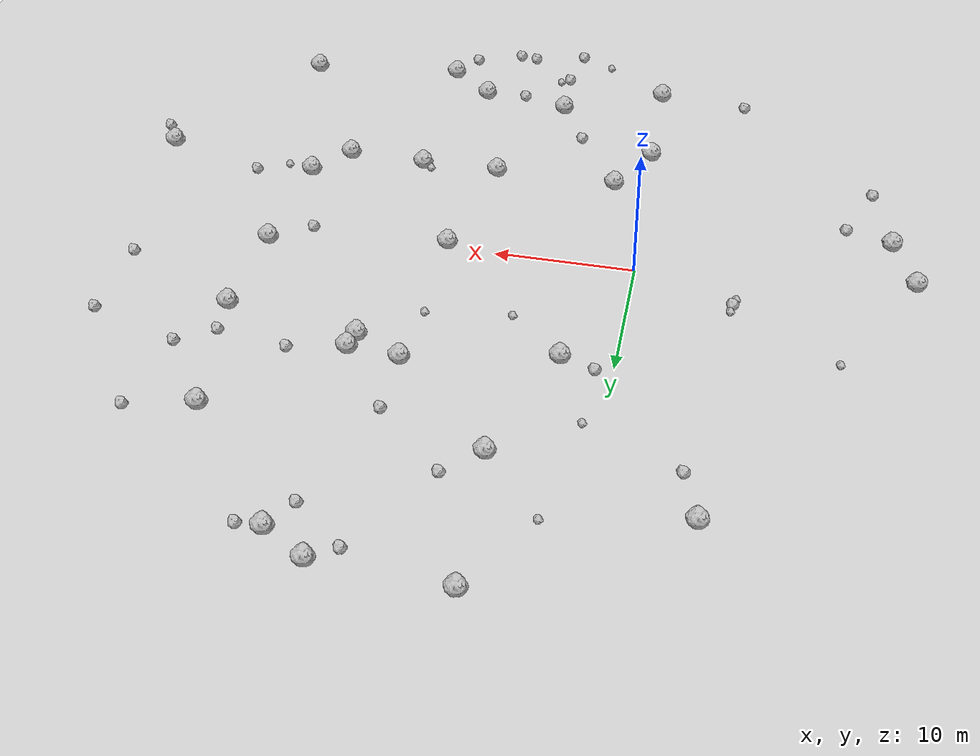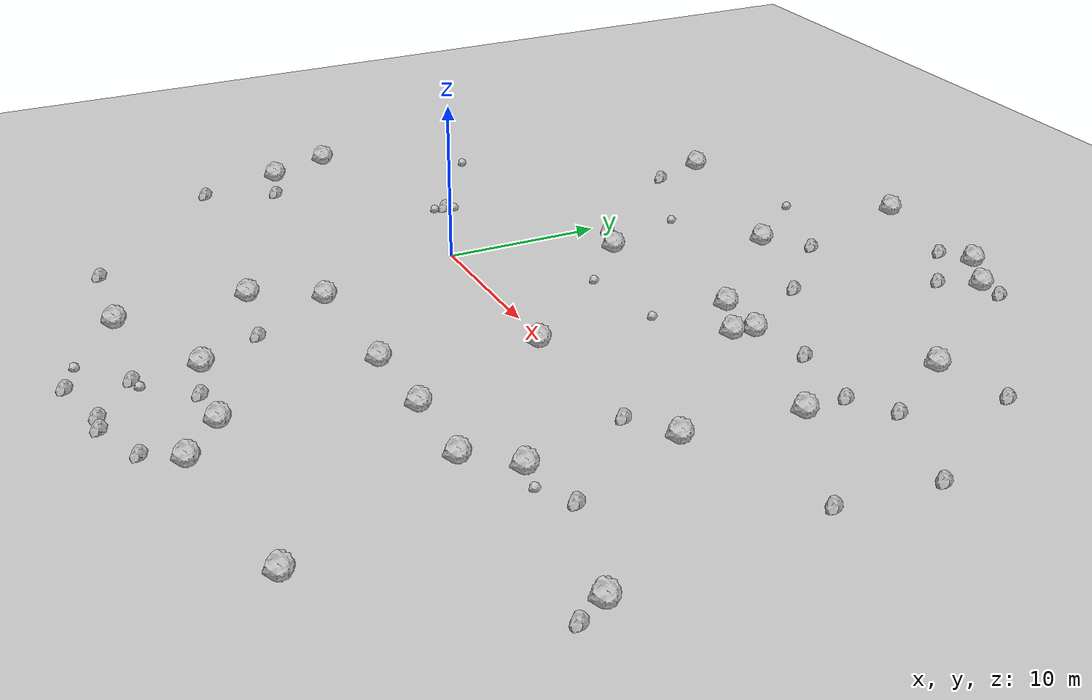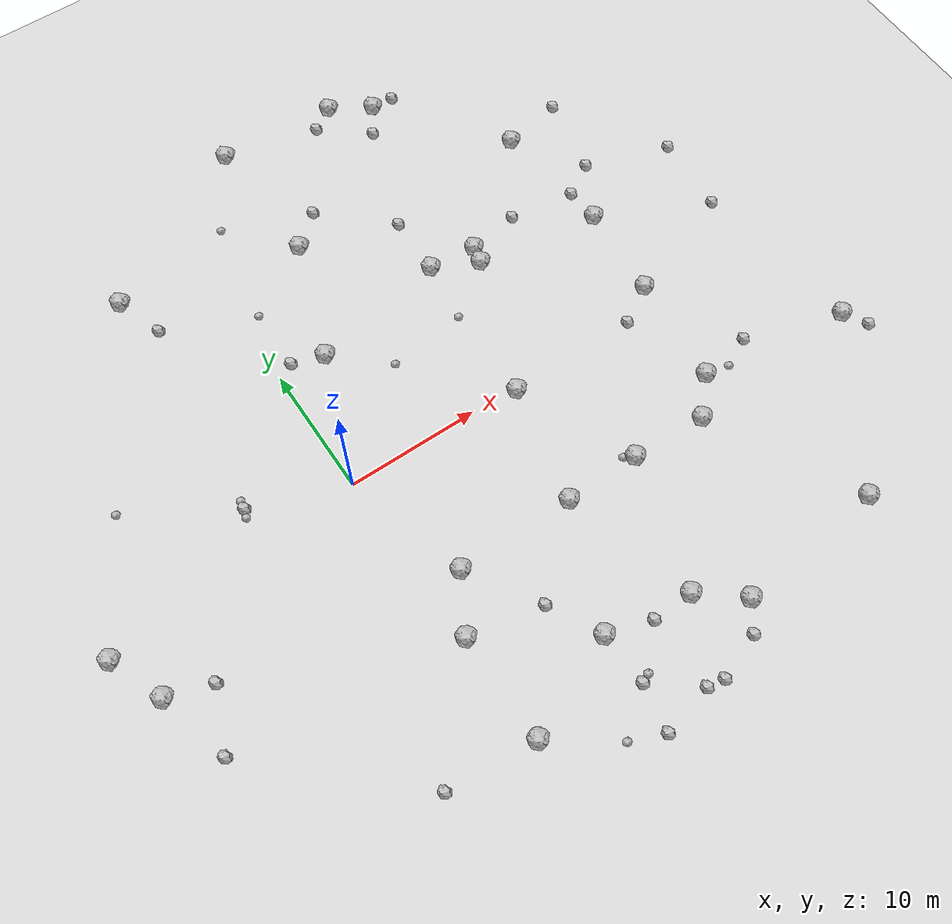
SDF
<sdf version="1.6">
 <world name="default">
  <include><uri>model://custom_ground</uri></include>
  <include><uri>model://sun</uri></include>
  <model name="rock1_0_0">
   <include><uri>model://rock1</uri><pose>8.014704926354462 -18.49361364034207 0.5 0 0 0</pose></include>
  </model>
  <model name="rock1_0_1">
   <include><uri>model://rock1</uri><pose>25.573061405672973 -6.980809967983461 0.5 0 0 0</pose></include>
  </model>
  <model name="rock1_0_2">
   <include><uri>model://rock1</uri><pose>37.05892887886623 -8.57857589583287 0.5 0 0 0</pose></include>
  </model>
  <model name="rock1_0_3">
   <include><uri>model://rock1</uri><pose>14.447380397119069 -19.399505642528474 0.5 0 0 0</pose></include>
  </model>
  <model name="rock1_0_4">
   <include><uri>model://rock1</uri><pose>17.507150166787127 10.083130815820375 0.5 0 0 0</pose></include>
  </model>
  <model name="rock1_0_5">
   <include><uri>model://rock1</uri><pose>6.905325119836373 18.913771559148323 0.5 0 0 0</pose></include>
  </model>
  <model name="rock1_0_6">
   <include><uri>model://rock1</uri><pose>23.159705777969215 -9.58704639761536 0.5 0 0 0</pose></include>
  </model>
  <model name="rock1_0_7">
   <include><uri>model://rock1</uri><pose>-19.50006351161806 -1.8972151291231683 0.5 0 0 0</pose></include>
  </model>
  <model name="rock1_0_8">
   <include><uri>model://rock1</uri><pose>17.813895654922767 11.406422860787089 0.5 0 0 0</pose></include>
  </model>
  <model name="rock1_0_9">
   <include><uri>model://rock1</uri><pose>0.5192502456148027 -21.61946003745059 0.5 0 0 0</pose></include>
  </model>
  <model name="rock1_0_10">
   <include><uri>model://rock1</uri><pose>2.745626244234355 -9.46299703782589 0.5 0 0 0</pose></include>
  </model>
  <model name="rock1_0_11">
   <include><uri>model://rock1</uri><pose>18.632980836648805 27.21927604334565 0.5 0 0 0</pose></include>
  </model>
  <model name="rock1_0_12">
   <include><uri>model://rock1</uri><pose>26.38935250381023 1.4144262218475596 0.5 0 0 0</pose></include>
  </model>
  <model name="rock1_0_13">
   <include><uri>model://rock1</uri><pose>28.897749746792393 -20.71360675136828 0.5 0 0 0</pose></include>
  </model>
  <model name="rock1_0_14">
   <include><uri>model://rock1</uri><pose>3.7014788950971607 9.723189109151342 0.5 0 0 0</pose></include>
  </model>
  <model name="rock1_0_15">
   <include><uri>model://rock1</uri><pose>17.43358810798727 -9.358902019188484 0.5 0 0 0</pose></include>
  </model>
  <model name="rock1_0_16">
   <include><uri>model://rock1</uri><pose>-6.60727233602568 22.009721791537636 0.5 0 0 0</pose></include>
  </model>
  <model name="rock1_0_17">
   <include><uri>model://rock1</uri><pose>-17.797919921751703 -6.024557068145057 0.5 0 0 0</pose></include>
  </model>
  <model name="rock1_0_18">
   <include><uri>model://rock1</uri><pose>15.584479629937796 29.050384454229686 0.5 0 0 0</pose></include>
  </model>
  <model name="rock1_0_19">
   <include><uri>model://rock1</uri><pose>25.901384876871496 18.183010731451347 0.5 0 0 0</pose></include>
  </model>
  <model name="rock1_0_20">
   <include><uri>model://rock1</uri><pose>27.01945758188611 8.652305441681001 0.5 0 0 0</pose></include>
  </model>
  <model name="rock1_0_21">
   <include><uri>model://rock1</uri><pose>0.4313742360857482 -13.568947367759126 0.5 0 0 0</pose></include>
  </model>
  <model name="rock1_0_22">
   <include><uri>model://rock1</uri><pose>6.426039027255786 29.51596994248677 0.5 0 0 0</pose></include>
  </model>
  <model name="rock1_0_23">
   <include><uri>model://rock1</uri><pose>13.568272839234723 -0.3965600072551716 0.5 0 0 0</pose></include>
  </model>
  <model name="rock1_0_24">
   <include><uri>model://rock1</uri><pose>11.709690238882342 -9.42730344883794 0.5 0 0 0</pose></include>
  </model>
  <model name="rock1_0_25">
   <include><uri>model://rock1</uri><pose>14.149274765556385 11.738043072748539 0.5 0 0 0</pose></include>
  </model>
  <model name="rock1_0_26">
   <include><uri>model://rock1</uri><pose>17.533495181565385 -21.900562409363282 0.5 0 0 0</pose></include>
  </model>
  <model name="rock2_0_0">
   <include><uri>model://rock2</uri><pose>17.19937635421008 25.050068668480158 0.3 0 0 0</pose></include>
  </model>
  <model name="rock2_0_1">
   <include><uri>model://rock2</uri><pose>-7.120115281056501 2.5367088496326815 0.3 0 0 0</pose></include>
  </model>
  <model name="rock2_0_2">
   <include><uri>model://rock2</uri><pose>-6.165717397587546 -21.011113587989858 0.3 0 0 0</pose></include>
  </model>
  <model name="rock2_0_3">
   <include><uri>model://rock2</uri><pose>13.677902977760269 27.925249224654962 0.3 0 0 0</pose></include>
  </model>
  <model name="rock2_0_4">
   <include><uri>model://rock2</uri><pose>11.37713108671744 -24.966520231783253 0.3 0 0 0</pose></include>
  </model>
  <model name="rock2_0_5">
   <include><uri>model://rock2</uri><pose>7.514766203739217 -25.891973493161423 0.3 0 0 0</pose></include>
  </model>
  <model name="rock2_0_6">
   <include><uri>model://rock2</uri><pose>35.80363520152538 10.823405719210136 0.3 0 0 0</pose></include>
  </model>
  <model name="rock2_0_7">
   <include><uri>model://rock2</uri><pose>12.672210038756987 -25.17892123750584 0.3 0 0 0</pose></include>
  </model>
  <model name="rock2_0_8">
   <include><uri>model://rock2</uri><pose>35.33024511589522 4.657484730109331 0.3 0 0 0</pose></include>
  </model>
  <model name="rock2_0_9">
   <include><uri>model://rock2</uri><pose>9.329796938099058 21.118287279019604 0.3 0 0 0</pose></include>
  </model>
  <model name="rock2_0_10">
   <include><uri>model://rock2</uri><pose>30.572122042076934 19.207183093456244 0.3 0 0 0</pose></include>
  </model>
  <model name="rock2_0_11">
   <include><uri>model://rock2</uri><pose>29.63920740459602 -6.1987073161828405 0.3 0 0 0</pose></include>
  </model>
  <model name="rock2_0_12">
   <include><uri>model://rock2</uri><pose>-16.36614117996037 -11.485509086337501 0.3 0 0 0</pose></include>
  </model>
  <model name="rock2_0_13">
   <include><uri>model://rock2</uri><pose>-5.4004712292958 18.391953693323913 0.3 0 0 0</pose></include>
  </model>
  <model name="rock2_0_14">
   <include><uri>model://rock2</uri><pose>1.2388601760272806 10.568299231014258 0.3 0 0 0</pose></include>
  </model>
  <model name="rock2_0_15">
   <include><uri>model://rock2</uri><pose>-14.56013971208524 -7.027429546025946 0.3 0 0 0</pose></include>
  </model>
  <model name="rock2_0_16">
   <include><uri>model://rock2</uri><pose>38.06900000231073 -10.370579649031658 0.3 0 0 0</pose></include>
  </model>
  <model name="rock2_0_17">
   <include><uri>model://rock2</uri><pose>8.130019056521093 -22.423411336874892 0.3 0 0 0</pose></include>
  </model>
  <model name="rock2_0_18">
   <include><uri>model://rock2</uri><pose>21.7767510680126 12.176109174552074 0.3 0 0 0</pose></include>
  </model>
  <model name="rock2_0_19">
   <include><uri>model://rock2</uri><pose>16.085218949651562 -23.92641997834166 0.3 0 0 0</pose></include>
  </model>
  <model name="rock2_0_20">
   <include><uri>model://rock2</uri><pose>29.356026811969677 12.988418405405483 0.3 0 0 0</pose></include>
  </model>
  <model name="rock2_0_21">
   <include><uri>model://rock2</uri><pose>11.305285018403243 -19.4802886723127 0.3 0 0 0</pose></include>
  </model>
  <model name="rock2_0_22">
   <include><uri>model://rock2</uri><pose>14.205905825606564 16.505232605276717 0.3 0 0 0</pose></include>
  </model>
  <model name="rock2_0_23">
   <include><uri>model://rock2</uri><pose>26.806089125259696 11.40528910510011 0.3 0 0 0</pose></include>
  </model>
  <model name="rock2_0_24">
   <include><uri>model://rock2</uri><pose>23.476633749094233 -0.30030359305104426 0.3 0 0 0</pose></include>
  </model>
  <model name="rock2_0_25">
   <include><uri>model://rock2</uri><pose>20.323890885120882 27.235126272928923 0.3 0 0 0</pose></include>
  </model>
  <model name="rock2_0_26">
   <include><uri>model://rock2</uri><pose>5.959665036185779 -14.626095761158977 0.3 0 0 0</pose></include>
  </model>
  <model name="rock3_0_0">
   <include><uri>model://rock3</uri><pose>8.791100230101932 -22.154486247381776 0.2 0 0 0</pose></include>
  </model>
  <model name="rock3_0_1">
   <include><uri>model://rock3</uri><pose>2.668142415005523 23.60032719774955 0.2 0 0 0</pose></include>
  </model>
  <model name="rock3_0_2">
   <include><uri>model://rock3</uri><pose>-7.056119422033969 3.1629047723635466 0.2 0 0 0</pose></include>
  </model>
  <model name="rock3_0_3">
   <include><uri>model://rock3</uri><pose>-14.620246140299628 7.042097807542277 0.2 0 0 0</pose></include>
  </model>
  <model name="rock3_0_4">
   <include><uri>model://rock3</uri><pose>27.382378661929636 -7.355304517494432 0.2 0 0 0</pose></include>
  </model>
  <model name="rock3_0_5">
   <include><uri>model://rock3</uri><pose>-7.352971242310231 1.866388104033092 0.2 0 0 0</pose></include>
  </model>
  <model name="rock3_0_6">
   <include><uri>model://rock3</uri><pose>13.463097715966214 7.038137976472477 0.2 0 0 0</pose></include>
  </model>
  <model name="rock3_0_7">
   <include><uri>model://rock3</uri><pose>16.67973032281713 -8.922693565727219 0.2 0 0 0</pose></include>
  </model>
  <model name="rock3_0_8">
   <include><uri>model://rock3</uri><pose>5.032646201042404 -24.898793162432614 0.2 0 0 0</pose></include>
  </model>
  <model name="rock3_0_9">
   <include><uri>model://rock3</uri><pose>1.3014752115080697 15.35972880508303 0.2 0 0 0</pose></include>
  </model>
  <model name="rock3_0_10">
   <include><uri>model://rock3</uri><pose>7.480657181084268 6.296440512668546 0.2 0 0 0</pose></include>
  </model>
 </world>
</sdf>
